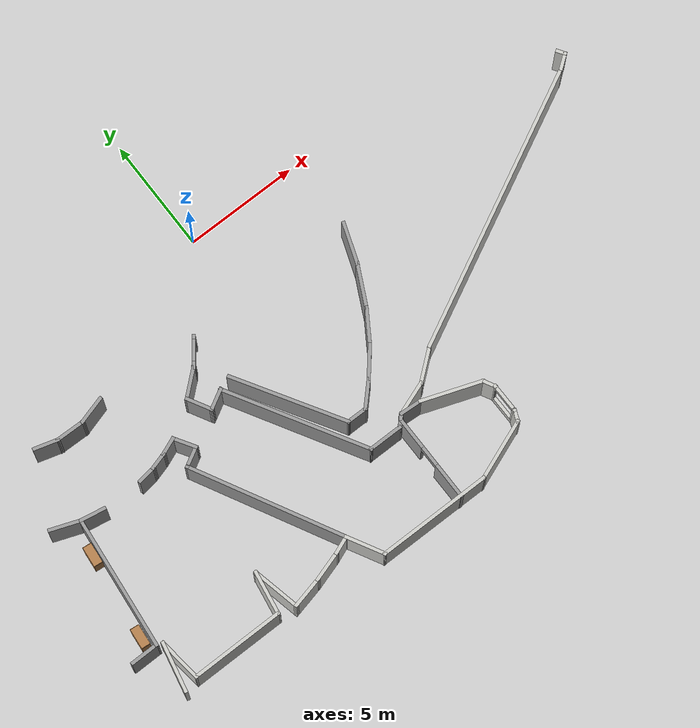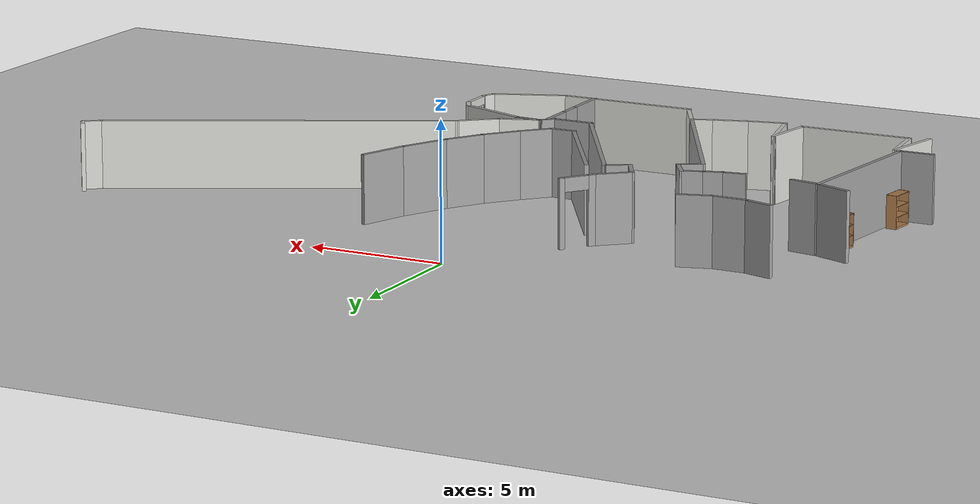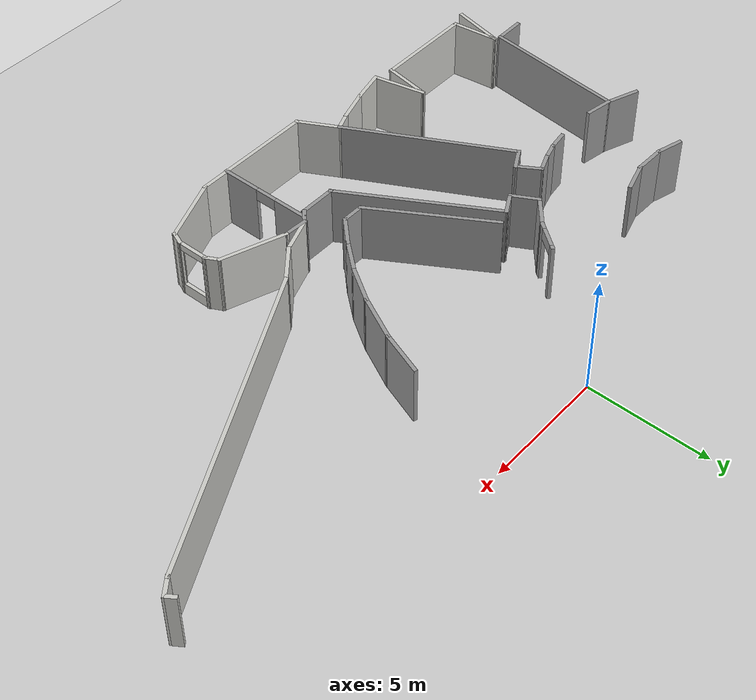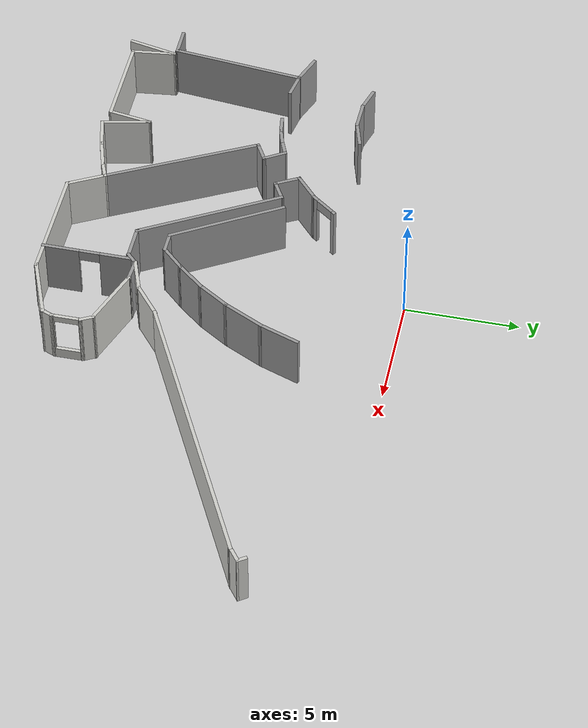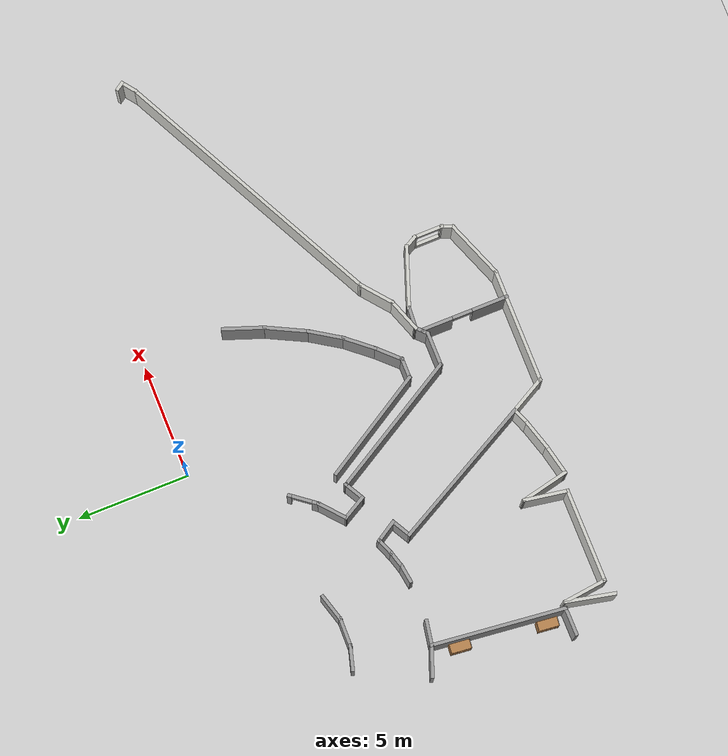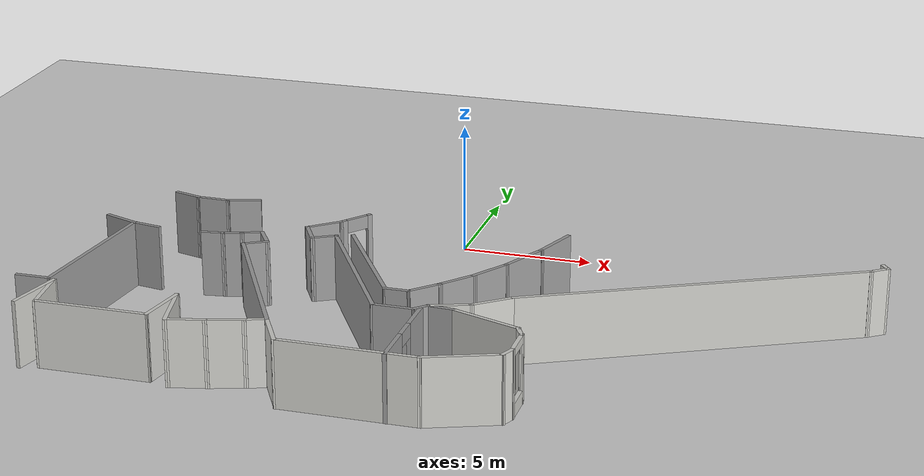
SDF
<sdf version="1.7">
 <world name="default">
  <model name="ground_plane">
   <static>1</static>
   <link name="link">
    <collision name="collision">
     <geometry><plane><normal>0 0 1</normal><size>100 100</size></plane></geometry>
     <surface>
      <contact><collide_bitmask>65535</collide_bitmask></contact>
      <friction><ode><mu>100</mu><mu2>50</mu2></ode></friction>
     </surface>
    </collision>
    <visual name="visual">
     <cast_shadows>0</cast_shadows>
     <geometry><plane><normal>0 0 1</normal><size>100 100</size></plane></geometry>
     <material>
      <script><uri>file://media/materials/scripts/gazebo.material</uri><name>Gazebo/Grey</name></script>
     </material>
    </visual>
   </link>
  </model>
  <model name="model">
   <pose>-4.1341 -0.05921 0 0 -0 0</pose>
   <link name="Wall_164">
    <collision name="Wall_164_Collision">
     <geometry><box><size>1.33004 0.15 2.5</size></box></geometry>
     <pose>0 0 1.25 0 -0 0</pose>
    </collision>
    <visual name="Wall_164_Visual">
     <pose>0 0 1.25 0 -0 0</pose>
     <geometry><box><size>1.33004 0.15 2.5</size></box></geometry>
     <material>
      <script><uri>file://media/materials/scripts/gazebo.material</uri><name>Gazebo/Grey</name></script>
      <ambient>1 1 1 1</ambient>
     </material>
     <meta><layer>0</layer></meta>
    </visual>
    <pose>-7.85259 -12.618 0 0 -0 0.008474</pose>
   </link>
   <link name="Wall_166">
    <collision name="Wall_166_Collision">
     <geometry><box><size>5.98967 0.15 2.5</size></box></geometry>
     <pose>0 0 1.25 0 -0 0</pose>
    </collision>
    <visual name="Wall_166_Visual">
     <pose>0 0 1.25 0 -0 0</pose>
     <geometry><box><size>5.98967 0.15 2.5</size></box></geometry>
     <material>
      <script><uri>file://media/materials/scripts/gazebo.material</uri><name>Gazebo/Grey</name></script>
      <ambient>1 1 1 1</ambient>
     </material>
     <meta><layer>0</layer></meta>
    </visual>
    <pose>-6.94415 -9.71055 0 0 -0 1.46152</pose>
   </link>
   <link name="Wall_167">
    <collision name="Wall_167_Collision">
     <geometry><box><size>1.20017 0.15 2.5</size></box></geometry>
     <pose>0 0 1.25 0 -0 0</pose>
    </collision>
    <visual name="Wall_167_Visual">
     <pose>0 0 1.25 0 -0 0</pose>
     <geometry><box><size>1.20017 0.15 2.5</size></box></geometry>
     <material>
      <script><uri>file://media/materials/scripts/gazebo.material</uri><name>Gazebo/Grey</name></script>
      <ambient>1 1 1 1</ambient>
     </material>
     <meta><layer>0</layer></meta>
    </visual>
    <pose>-6.10861 -6.89938 0 0 -0 -0.174672</pose>
   </link>
   <link name="Wall_169">
    <collision name="Wall_169_Collision">
     <geometry><box><size>1.45339 0.15 2.5</size></box></geometry>
     <pose>0 0 1.25 0 -0 0</pose>
    </collision>
    <visual name="Wall_169_Visual">
     <pose>0 0 1.25 0 -0 0</pose>
     <geometry><box><size>1.45339 0.15 2.5</size></box></geometry>
     <material>
      <script><uri>file://media/materials/scripts/gazebo.material</uri><name>Gazebo/Grey</name></script>
      <ambient>1 1 1 1</ambient>
     </material>
     <meta><layer>0</layer></meta>
    </visual>
    <pose>-7.23666 -6.58131 0 0 -0 2.7861</pose>
   </link>
   <link name="Wall_173">
    <collision name="Wall_173_Collision">
     <geometry><box><size>0.887742 0.15 2.5</size></box></geometry>
     <pose>0 0 1.25 0 -0 0</pose>
    </collision>
    <visual name="Wall_173_Visual">
     <pose>0 0 1.25 0 -0 0</pose>
     <geometry><box><size>0.887742 0.15 2.5</size></box></geometry>
     <material>
      <script><uri>file://media/materials/scripts/gazebo.material</uri><name>Gazebo/Grey</name></script>
      <ambient>1 1 1 1</ambient>
     </material>
     <meta><layer>0</layer></meta>
    </visual>
    <pose>-3.43446 -6.9344 0 0 -0 0.144812</pose>
   </link>
   <link name="Wall_174">
    <collision name="Wall_174_Collision">
     <geometry><box><size>0.847782 0.15 2.5</size></box></geometry>
     <pose>0 0 1.25 0 -0 0</pose>
    </collision>
    <visual name="Wall_174_Visual">
     <pose>0 0 1.25 0 -0 0</pose>
     <geometry><box><size>0.847782 0.15 2.5</size></box></geometry>
     <material>
      <script><uri>file://media/materials/scripts/gazebo.material</uri><name>Gazebo/Grey</name></script>
      <ambient>1 1 1 1</ambient>
     </material>
     <meta><layer>0</layer></meta>
    </visual>
    <pose>-2.73486 -6.78231 0 0 -0 0.287281</pose>
   </link>
   <link name="Wall_175">
    <collision name="Wall_175_Collision">
     <geometry><box><size>0.887115 0.15 2.5</size></box></geometry>
     <pose>0 0 1.25 0 -0 0</pose>
    </collision>
    <visual name="Wall_175_Visual">
     <pose>0 0 1.25 0 -0 0</pose>
     <geometry><box><size>0.887115 0.15 2.5</size></box></geometry>
     <material>
      <script><uri>file://media/materials/scripts/gazebo.material</uri><name>Gazebo/Grey</name></script>
      <ambient>1 1 1 1</ambient>
     </material>
     <meta><layer>0</layer></meta>
    </visual>
    <pose>-2.05807 -6.54657 0 0 -0 0.380506</pose>
   </link>
   <link name="Wall_176">
    <collision name="Wall_176_Collision">
     <geometry><box><size>1.13341 0.15 2.5</size></box></geometry>
     <pose>0 0 1.25 0 -0 0</pose>
    </collision>
    <visual name="Wall_176_Visual">
     <pose>0 0 1.25 0 -0 0</pose>
     <geometry><box><size>1.13341 0.15 2.5</size></box></geometry>
     <material>
      <script><uri>file://media/materials/scripts/gazebo.material</uri><name>Gazebo/Grey</name></script>
      <ambient>1 1 1 1</ambient>
     </material>
     <meta><layer>0</layer></meta>
    </visual>
    <pose>-1.45732 -6.82794 0 0 -0 -1.01711</pose>
   </link>
   <link name="Wall_177">
    <collision name="Wall_177_Collision">
     <geometry><box><size>1.02156 0.15 2.5</size></box></geometry>
     <pose>0 0 1.25 0 -0 0</pose>
    </collision>
    <visual name="Wall_177_Visual">
     <pose>0 0 1.25 0 -0 0</pose>
     <geometry><box><size>1.02156 0.15 2.5</size></box></geometry>
     <material>
      <script><uri>file://media/materials/scripts/gazebo.material</uri><name>Gazebo/Grey</name></script>
      <ambient>1 1 1 1</ambient>
     </material>
     <meta><layer>0</layer></meta>
    </visual>
    <pose>-1.57899 -7.4591 0 0 -0 -2.6311</pose>
   </link>
   <link name="Wall_180">
    <collision name="Wall_180_Collision">
     <geometry><box><size>7.09459 0.15 2.5</size></box></geometry>
     <pose>0 0 1.25 0 -0 0</pose>
    </collision>
    <visual name="Wall_180_Visual">
     <pose>0 0 1.25 0 -0 0</pose>
     <geometry><box><size>7.09459 0.15 2.5</size></box></geometry>
     <material>
      <script><uri>file://media/materials/scripts/gazebo.material</uri><name>Gazebo/Grey</name></script>
      <ambient>1 1 1 1</ambient>
     </material>
     <meta><layer>0</layer></meta>
    </visual>
    <pose>-0.326679 -10.7366 0 0 -0 -1.08132</pose>
   </link>
   <link name="Wall_184">
    <pose>1.08477 -4.094 0 0 -0 -2.22364</pose>
    <visual name="Wall_184_Visual_0">
     <pose>-0.623774 0 1.25 0 -0 0</pose>
     <geometry><box><size>0.193801 0.15 2.5</size></box></geometry>
     <material>
      <script><uri>file://media/materials/scripts/gazebo.material</uri><name>Gazebo/Grey</name></script>
      <ambient>1 1 1 1</ambient>
     </material>
     <meta><layer>0</layer></meta>
    </visual>
    <collision name="Wall_184_Collision_0">
     <geometry><box><size>0.193801 0.15 2.5</size></box></geometry>
     <pose>-0.623774 0 1.25 0 -0 0</pose>
    </collision>
    <visual name="Wall_184_Visual_1">
     <pose>0.5469 0 1.25 0 -0 0</pose>
     <geometry><box><size>0.347547 0.15 2.5</size></box></geometry>
     <material>
      <script><uri>file://media/materials/scripts/gazebo.material</uri><name>Gazebo/Grey</name></script>
      <ambient>1 1 1 1</ambient>
     </material>
     <meta><layer>0</layer></meta>
    </visual>
    <collision name="Wall_184_Collision_1">
     <geometry><box><size>0.347547 0.15 2.5</size></box></geometry>
     <pose>0.5469 0 1.25 0 -0 0</pose>
    </collision>
    <visual name="Wall_184_Visual_2">
     <pose>-0.076873 0 2.25 0 -0 0</pose>
     <geometry><box><size>0.9 0.15 0.5</size></box></geometry>
     <material>
      <script><uri>file://media/materials/scripts/gazebo.material</uri><name>Gazebo/Grey</name></script>
      <ambient>1 1 1 1</ambient>
     </material>
     <meta><layer>0</layer></meta>
    </visual>
    <collision name="Wall_184_Collision_2">
     <geometry><box><size>0.9 0.15 0.5</size></box></geometry>
     <pose>-0.076873 0 2.25 0 -0 0</pose>
    </collision>
   </link>
   <link name="Wall_185">
    <collision name="Wall_185_Collision">
     <geometry><box><size>1.4602 0.15 2.5</size></box></geometry>
     <pose>0 0 1.25 0 -0 0</pose>
    </collision>
    <visual name="Wall_185_Visual">
     <pose>0 0 1.25 0 -0 0</pose>
     <geometry><box><size>1.4602 0.15 2.5</size></box></geometry>
     <material>
      <script><uri>file://media/materials/scripts/gazebo.material</uri><name>Gazebo/Grey</name></script>
      <ambient>1 1 1 1</ambient>
     </material>
     <meta><layer>0</layer></meta>
    </visual>
    <pose>0.196945 -5.0353 0 0 -0 -2.4288</pose>
   </link>
   <link name="Wall_187">
    <collision name="Wall_187_Collision">
     <geometry><box><size>1.24375 0.15 2.5</size></box></geometry>
     <pose>0 0 1.25 0 -0 0</pose>
    </collision>
    <visual name="Wall_187_Visual">
     <pose>0 0 1.25 0 -0 0</pose>
     <geometry><box><size>1.24375 0.15 2.5</size></box></geometry>
     <material>
      <script><uri>file://media/materials/scripts/gazebo.material</uri><name>Gazebo/Grey</name></script>
      <ambient>1 1 1 1</ambient>
     </material>
     <meta><layer>0</layer></meta>
    </visual>
    <pose>-0.033447 -5.94196 0 0 -0 -1.06447</pose>
   </link>
   <link name="Wall_190">
    <collision name="Wall_190_Collision">
     <geometry><box><size>0.15 0.15 2.5</size></box></geometry>
     <pose>0 0 1.25 0 -0 0</pose>
    </collision>
    <visual name="Wall_190_Visual">
     <pose>0 0 1.25 0 -0 0</pose>
     <geometry><box><size>0.15 0.15 2.5</size></box></geometry>
     <material>
      <script><uri>file://media/materials/scripts/gazebo.material</uri><name>Gazebo/Grey</name></script>
      <ambient>1 1 1 1</ambient>
     </material>
     <meta><layer>0</layer></meta>
    </visual>
    <pose>1.00568 -5.98544 0 0 -0 0</pose>
   </link>
   <link name="Wall_192">
    <collision name="Wall_192_Collision">
     <geometry><box><size>0.15 0.15 2.5</size></box></geometry>
     <pose>0 0 1.25 0 -0 0</pose>
    </collision>
    <visual name="Wall_192_Visual">
     <pose>0 0 1.25 0 -0 0</pose>
     <geometry><box><size>0.15 0.15 2.5</size></box></geometry>
     <material>
      <script><uri>file://media/materials/scripts/gazebo.material</uri><name>Gazebo/Grey</name></script>
      <ambient>0 0 0 1</ambient>
     </material>
     <meta><layer>0</layer></meta>
    </visual>
    <pose>1.00568 -5.98544 0 0 -0 0</pose>
   </link>
   <link name="Wall_193">
    <collision name="Wall_193_Collision">
     <geometry><box><size>1.03768 0.15 2.5</size></box></geometry>
     <pose>0 0 1.25 0 -0 0</pose>
    </collision>
    <visual name="Wall_193_Visual">
     <pose>0 0 1.25 0 -0 0</pose>
     <geometry><box><size>1.03768 0.15 2.5</size></box></geometry>
     <material>
      <script><uri>file://media/materials/scripts/gazebo.material</uri><name>Gazebo/Grey</name></script>
      <ambient>1 1 1 1</ambient>
     </material>
     <meta><layer>0</layer></meta>
    </visual>
    <pose>0.618727 -6.20283 0 0 -0 0.511856</pose>
   </link>
   <link name="Wall_196">
    <collision name="Wall_196_Collision">
     <geometry><box><size>6.65835 0.15 2.5</size></box></geometry>
     <pose>0 0 1.25 0 -0 0</pose>
    </collision>
    <visual name="Wall_196_Visual">
     <pose>0 0 1.25 0 -0 0</pose>
     <geometry><box><size>6.65835 0.15 2.5</size></box></geometry>
     <material>
      <script><uri>file://media/materials/scripts/gazebo.material</uri><name>Gazebo/Grey</name></script>
      <ambient>1 1 1 1</ambient>
     </material>
     <meta><layer>0</layer></meta>
    </visual>
    <pose>2.64198 -8.7983 0 0 -0 -1.04393</pose>
   </link>
   <link name="Wall_197">
    <collision name="Wall_197_Collision">
     <geometry><box><size>1.59491 0.15 2.5</size></box></geometry>
     <pose>0 0 1.25 0 -0 0</pose>
    </collision>
    <visual name="Wall_197_Visual">
     <pose>0 0 1.25 0 -0 0</pose>
     <geometry><box><size>1.59491 0.15 2.5</size></box></geometry>
     <material>
      <script><uri>file://media/materials/scripts/gazebo.material</uri><name>Gazebo/Grey</name></script>
      <ambient>1 1 1 1</ambient>
     </material>
     <meta><layer>0</layer></meta>
    </visual>
    <pose>5.00069 -11.6112 0 0 -0 0</pose>
   </link>
   <link name="Wall_199">
    <collision name="Wall_199_Collision">
     <geometry><box><size>0.713098 0.15 2.5</size></box></geometry>
     <pose>0 0 1.25 0 -0 0</pose>
    </collision>
    <visual name="Wall_199_Visual">
     <pose>0 0 1.25 0 -0 0</pose>
     <geometry><box><size>0.713098 0.15 2.5</size></box></geometry>
     <material>
      <script><uri>file://media/materials/scripts/gazebo.material</uri><name>Gazebo/Grey</name></script>
      <ambient>1 1 1 1</ambient>
     </material>
     <meta><layer>0</layer></meta>
    </visual>
    <pose>5.9241 -11.414 0 0 -0 0.775769</pose>
   </link>
   <link name="Wall_204">
    <pose>5.9425 -13.3805 0 0 -0 1.5708</pose>
    <visual name="Wall_204_Visual_0">
     <pose>-1.17213 0 1.25 0 -0 0</pose>
     <geometry><box><size>1.65574 0.15 2.5</size></box></geometry>
     <material>
      <script><uri>file://media/materials/scripts/gazebo.material</uri><name>Gazebo/Grey</name></script>
      <ambient>1 1 1 1</ambient>
     </material>
     <meta><layer>0</layer></meta>
    </visual>
    <collision name="Wall_204_Collision_0">
     <geometry><box><size>1.65574 0.15 2.5</size></box></geometry>
     <pose>-1.17213 0 1.25 0 -0 0</pose>
    </collision>
    <visual name="Wall_204_Visual_1">
     <pose>1.27787 0 1.25 0 -0 0</pose>
     <geometry><box><size>1.44426 0.15 2.5</size></box></geometry>
     <material>
      <script><uri>file://media/materials/scripts/gazebo.material</uri><name>Gazebo/Grey</name></script>
      <ambient>1 1 1 1</ambient>
     </material>
     <meta><layer>0</layer></meta>
    </visual>
    <collision name="Wall_204_Collision_1">
     <geometry><box><size>1.44426 0.15 2.5</size></box></geometry>
     <pose>1.27787 0 1.25 0 -0 0</pose>
    </collision>
    <visual name="Wall_204_Visual_2">
     <pose>0.105736 0 2.25 0 -0 0</pose>
     <geometry><box><size>0.9 0.15 0.5</size></box></geometry>
     <material>
      <script><uri>file://media/materials/scripts/gazebo.material</uri><name>Gazebo/Grey</name></script>
      <ambient>1 1 1 1</ambient>
     </material>
     <meta><layer>0</layer></meta>
    </visual>
    <collision name="Wall_204_Collision_2">
     <geometry><box><size>0.9 0.15 0.5</size></box></geometry>
     <pose>0.105736 0 2.25 0 -0 0</pose>
    </collision>
   </link>
   <link name="Wall_214">
    <collision name="Wall_214_Collision">
     <geometry><box><size>1.91476 0.15 2.5</size></box></geometry>
     <pose>0 0 1.25 0 -0 0</pose>
    </collision>
    <visual name="Wall_214_Visual">
     <pose>0 0 1.25 0 -0 0</pose>
     <geometry><box><size>1.91476 0.15 2.5</size></box></geometry>
     <material>
      <script><uri>file://media/materials/scripts/gazebo.material</uri><name>Gazebo/Grey</name></script>
      <ambient>1 1 1 1</ambient>
     </material>
     <meta><layer>0</layer></meta>
    </visual>
    <pose>8.81934 -4.41818 0 0 -0 -1.91449</pose>
   </link>
   <link name="Wall_215">
    <collision name="Wall_215_Collision">
     <geometry><box><size>2.02138 0.15 2.5</size></box></geometry>
     <pose>0 0 1.25 0 -0 0</pose>
    </collision>
    <visual name="Wall_215_Visual">
     <pose>0 0 1.25 0 -0 0</pose>
     <geometry><box><size>2.02138 0.15 2.5</size></box></geometry>
     <material>
      <script><uri>file://media/materials/scripts/gazebo.material</uri><name>Gazebo/Grey</name></script>
      <ambient>1 1 1 1</ambient>
     </material>
     <meta><layer>0</layer></meta>
    </visual>
    <pose>8.10465 -6.08641 0 0 -0 -2.03314</pose>
   </link>
   <link name="Wall_217">
    <collision name="Wall_217_Collision">
     <geometry><box><size>1.66874 0.15 2.5</size></box></geometry>
     <pose>0 0 1.25 0 -0 0</pose>
    </collision>
    <visual name="Wall_217_Visual">
     <pose>0 0 1.25 0 -0 0</pose>
     <geometry><box><size>1.66874 0.15 2.5</size></box></geometry>
     <material>
      <script><uri>file://media/materials/scripts/gazebo.material</uri><name>Gazebo/Grey</name></script>
      <ambient>1 1 1 1</ambient>
     </material>
     <meta><layer>0</layer></meta>
    </visual>
    <pose>7.27665 -7.56263 0 0 -0 -2.14213</pose>
   </link>
   <link name="Wall_218">
    <collision name="Wall_218_Collision">
     <geometry><box><size>1.57541 0.15 2.5</size></box></geometry>
     <pose>0 0 1.25 0 -0 0</pose>
    </collision>
    <visual name="Wall_218_Visual">
     <pose>0 0 1.25 0 -0 0</pose>
     <geometry><box><size>1.57541 0.15 2.5</size></box></geometry>
     <material>
      <script><uri>file://media/materials/scripts/gazebo.material</uri><name>Gazebo/Grey</name></script>
      <ambient>1 1 1 1</ambient>
     </material>
     <meta><layer>0</layer></meta>
    </visual>
    <pose>6.40975 -8.74891 0 0 -0 -2.26553</pose>
   </link>
   <link name="Wall_219">
    <collision name="Wall_219_Collision">
     <geometry><box><size>1.37617 0.15 2.5</size></box></geometry>
     <pose>0 0 1.25 0 -0 0</pose>
    </collision>
    <visual name="Wall_219_Visual">
     <pose>0 0 1.25 0 -0 0</pose>
     <geometry><box><size>1.37617 0.15 2.5</size></box></geometry>
     <material>
      <script><uri>file://media/materials/scripts/gazebo.material</uri><name>Gazebo/Grey</name></script>
      <ambient>1 1 1 1</ambient>
     </material>
     <meta><layer>0</layer></meta>
    </visual>
    <pose>5.52765 -9.73748 0 0 -0 -2.33865</pose>
   </link>
   <link name="Wall_220">
    <collision name="Wall_220_Collision">
     <geometry><box><size>1 0.15 2.5</size></box></geometry>
     <pose>0 0 1.25 0 -0 0</pose>
    </collision>
    <visual name="Wall_220_Visual">
     <pose>0 0 1.25 0 -0 0</pose>
     <geometry><box><size>1 0.15 2.5</size></box></geometry>
     <material>
      <script><uri>file://media/materials/scripts/gazebo.material</uri><name>Gazebo/Grey</name></script>
      <ambient>1 1 1 1</ambient>
     </material>
     <meta><layer>0</layer></meta>
    </visual>
    <pose>4.6768 -10.1785 0 0 -0 3.14159</pose>
   </link>
   <link name="Wall_221">
    <collision name="Wall_221_Collision">
     <geometry><box><size>5.30224 0.15 2.5</size></box></geometry>
     <pose>0 0 1.25 0 -0 0</pose>
    </collision>
    <visual name="Wall_221_Visual">
     <pose>0 0 1.25 0 -0 0</pose>
     <geometry><box><size>5.30224 0.15 2.5</size></box></geometry>
     <material>
      <script><uri>file://media/materials/scripts/gazebo.material</uri><name>Gazebo/Grey</name></script>
      <ambient>1 1 1 1</ambient>
     </material>
     <meta><layer>0</layer></meta>
    </visual>
    <pose>2.92019 -7.97326 0 0 -0 2.11403</pose>
   </link>
   <link name="Wall_317">
    <collision name="Wall_317_Collision">
     <geometry><box><size>1.33513 0.15 2.5</size></box></geometry>
     <pose>0 0 1.25 0 -0 0</pose>
    </collision>
    <visual name="Wall_317_Visual">
     <pose>0 0 1.25 0 -0 0</pose>
     <geometry><box><size>1.33513 0.15 2.5</size></box></geometry>
     <material>
      <script><uri>file://media/materials/scripts/gazebo.material</uri><name>Gazebo/Grey</name></script>
      <ambient>1 1 1 1</ambient>
     </material>
     <meta><layer>0</layer></meta>
    </visual>
    <pose>-3.5968 -3.48902 0 0 -0 -2.85799</pose>
   </link>
   <link name="Wall_318">
    <collision name="Wall_318_Collision">
     <geometry><box><size>1.36212 0.15 2.5</size></box></geometry>
     <pose>0 0 1.25 0 -0 0</pose>
    </collision>
    <visual name="Wall_318_Visual">
     <pose>0 0 1.25 0 -0 0</pose>
     <geometry><box><size>1.36212 0.15 2.5</size></box></geometry>
     <material>
      <script><uri>file://media/materials/scripts/gazebo.material</uri><name>Gazebo/Grey</name></script>
      <ambient>1 1 1 1</ambient>
     </material>
     <meta><layer>0</layer></meta>
    </visual>
    <pose>-4.77176 -3.64339 0 0 -0 3.12273</pose>
   </link>
   <link name="Wall_319">
    <collision name="Wall_319_Collision">
     <geometry><box><size>1.16705 0.15 2.5</size></box></geometry>
     <pose>0 0 1.25 0 -0 0</pose>
    </collision>
    <visual name="Wall_319_Visual">
     <pose>0 0 1.25 0 -0 0</pose>
     <geometry><box><size>1.16705 0.15 2.5</size></box></geometry>
     <material>
      <script><uri>file://media/materials/scripts/gazebo.material</uri><name>Gazebo/Grey</name></script>
      <ambient>1 1 1 1</ambient>
     </material>
     <meta><layer>0</layer></meta>
    </visual>
    <pose>-5.86666 -3.49187 0 0 -0 2.86252</pose>
   </link>
   <link name="Wall_44">
    <collision name="Wall_44_Collision">
     <geometry><box><size>0.477158 0.15 2.5</size></box></geometry>
     <pose>0 0 1.25 0 -0 0</pose>
    </collision>
    <visual name="Wall_44_Visual">
     <pose>0 0 1.25 0 -0 0</pose>
     <geometry><box><size>0.477158 0.15 2.5</size></box></geometry>
     <material>
      <script><uri>file://media/materials/scripts/gazebo.material</uri><name>Gazebo/CeilingTiled</name></script>
      <ambient>0.964706 1 0.972549 1</ambient>
     </material>
     <meta><layer>0</layer></meta>
    </visual>
    <pose>20.5568 -3.36224 0 0 -0 -0.982794</pose>
   </link>
   <link name="Wall_46">
    <collision name="Wall_46_Collision">
     <geometry><box><size>0.829776 0.15 2.5</size></box></geometry>
     <pose>0 0 1.25 0 -0 0</pose>
    </collision>
    <visual name="Wall_46_Visual">
     <pose>0 0 1.25 0 -0 0</pose>
     <geometry><box><size>0.829776 0.15 2.5</size></box></geometry>
     <material>
      <script><uri>file://media/materials/scripts/gazebo.material</uri><name>Gazebo/CeilingTiled</name></script>
      <ambient>0.964706 1 0.972549 1</ambient>
     </material>
     <meta><layer>0</layer></meta>
    </visual>
    <pose>20.3768 -3.70389 0 0 -0 -2.49216</pose>
   </link>
   <link name="Wall_48">
    <collision name="Wall_48_Collision">
     <geometry><box><size>12.9371 0.15 2.5</size></box></geometry>
     <pose>0 0 1.25 0 -0 0</pose>
    </collision>
    <visual name="Wall_48_Visual">
     <pose>0 0 1.25 0 -0 0</pose>
     <geometry><box><size>12.9371 0.15 2.5</size></box></geometry>
     <material>
      <script><uri>file://media/materials/scripts/gazebo.material</uri><name>Gazebo/CeilingTiled</name></script>
      <ambient>0.964706 1 0.972549 1</ambient>
     </material>
     <meta><layer>0</layer></meta>
    </visual>
    <pose>14.4129 -6.81893 0 0 -0 -2.66914</pose>
   </link>
   <link name="Wall_49">
    <collision name="Wall_49_Collision">
     <geometry><box><size>1.70812 0.15 2.5</size></box></geometry>
     <pose>0 0 1.25 0 -0 0</pose>
    </collision>
    <visual name="Wall_49_Visual">
     <pose>0 0 1.25 0 -0 0</pose>
     <geometry><box><size>1.70812 0.15 2.5</size></box></geometry>
     <material>
      <script><uri>file://media/materials/scripts/gazebo.material</uri><name>Gazebo/CeilingTiled</name></script>
      <ambient>0.964706 1 0.972549 1</ambient>
     </material>
     <meta><layer>0</layer></meta>
    </visual>
    <pose>8.11633 -10.2212 0 0 -0 -2.45677</pose>
   </link>
   <link name="Wall_50">
    <collision name="Wall_50_Collision">
     <geometry><box><size>1.62612 0.15 2.5</size></box></geometry>
     <pose>0 0 1.25 0 -0 0</pose>
    </collision>
    <visual name="Wall_50_Visual">
     <pose>0 0 1.25 0 -0 0</pose>
     <geometry><box><size>1.62612 0.15 2.5</size></box></geometry>
     <material>
      <script><uri>file://media/materials/scripts/gazebo.material</uri><name>Gazebo/CeilingTiled</name></script>
      <ambient>0.964706 1 0.972549 1</ambient>
     </material>
     <meta><layer>0</layer></meta>
    </visual>
    <pose>6.81901 -10.9654 0 0 -0 -2.79399</pose>
   </link>
   <link name="Wall_51">
    <collision name="Wall_51_Collision">
     <geometry><box><size>1.05712 0.15 2.5</size></box></geometry>
     <pose>0 0 1.25 0 -0 0</pose>
    </collision>
    <visual name="Wall_51_Visual">
     <pose>0 0 1.25 0 -0 0</pose>
     <geometry><box><size>1.05712 0.15 2.5</size></box></geometry>
     <material>
      <script><uri>file://media/materials/scripts/gazebo.material</uri><name>Gazebo/Grey</name></script>
      <ambient>0.964706 1 0.972549 1</ambient>
     </material>
     <meta><layer>0</layer></meta>
    </visual>
    <pose>6.57765 -11.247 0 0 -0 -0.066568</pose>
   </link>
   <link name="Wall_53">
    <collision name="Wall_53_Collision">
     <geometry><box><size>2.80305 0.15 2.5</size></box></geometry>
     <pose>0 0 1.25 0 -0 0</pose>
    </collision>
    <visual name="Wall_53_Visual">
     <pose>0 0 1.25 0 -0 0</pose>
     <geometry><box><size>2.80305 0.15 2.5</size></box></geometry>
     <material>
      <script><uri>file://media/materials/scripts/gazebo.material</uri><name>Gazebo/CeilingTiled</name></script>
      <ambient>0.964706 1 0.972549 1</ambient>
     </material>
     <meta><layer>0</layer></meta>
    </visual>
    <pose>8.27876 -11.7253 0 0 -0 -0.344555</pose>
   </link>
   <link name="Wall_54">
    <collision name="Wall_54_Collision">
     <geometry><box><size>0.68108 0.15 2.5</size></box></geometry>
     <pose>0 0 1.25 0 -0 0</pose>
    </collision>
    <visual name="Wall_54_Visual">
     <pose>0 0 1.25 0 -0 0</pose>
     <geometry><box><size>0.68108 0.15 2.5</size></box></geometry>
     <material>
      <script><uri>file://media/materials/scripts/gazebo.material</uri><name>Gazebo/CeilingTiled</name></script>
      <ambient>1 1 1 1</ambient>
     </material>
     <meta><layer>0</layer></meta>
    </visual>
    <pose>9.65208 -12.4077 0 0 -0 -1.08168</pose>
   </link>
   <link name="Wall_55">
    <pose>9.78063 -13.2622 0 0 -0 -1.5647</pose>
    <visual name="Wall_55_Visual_0">
     <pose>-0.617424 0 1.25 0 -0 0</pose>
     <geometry><box><size>0.15525 0.15 2.5</size></box></geometry>
     <material>
      <script><uri>file://media/materials/scripts/gazebo.material</uri><name>Gazebo/CeilingTiled</name></script>
      <ambient>0.964706 1 0.972549 1</ambient>
     </material>
     <meta><layer>0</layer></meta>
    </visual>
    <collision name="Wall_55_Collision_0">
     <geometry><box><size>0.15525 0.15 2.5</size></box></geometry>
     <pose>-0.617424 0 1.25 0 -0 0</pose>
    </collision>
    <visual name="Wall_55_Visual_1">
     <pose>0.077625 0 0.25 0 -0 0</pose>
     <geometry><box><size>1.23485 0.15 0.5</size></box></geometry>
     <material>
      <script><uri>file://media/materials/scripts/gazebo.material</uri><name>Gazebo/CeilingTiled</name></script>
      <ambient>0.964706 1 0.972549 1</ambient>
     </material>
     <meta><layer>0</layer></meta>
    </visual>
    <collision name="Wall_55_Collision_1">
     <geometry><box><size>1.23485 0.15 0.5</size></box></geometry>
     <pose>0.077625 0 0.25 0 -0 0</pose>
    </collision>
    <visual name="Wall_55_Visual_2">
     <pose>0.612625 0 1.5 0 -0 0</pose>
     <geometry><box><size>0.164848 0.15 2</size></box></geometry>
     <material>
      <script><uri>file://media/materials/scripts/gazebo.material</uri><name>Gazebo/CeilingTiled</name></script>
      <ambient>0.964706 1 0.972549 1</ambient>
     </material>
     <meta><layer>0</layer></meta>
    </visual>
    <collision name="Wall_55_Collision_2">
     <geometry><box><size>0.164848 0.15 2</size></box></geometry>
     <pose>0.612625 0 1.5 0 -0 0</pose>
    </collision>
    <visual name="Wall_55_Visual_3">
     <pose>-0.004799 0 2.35 0 -0 0</pose>
     <geometry><box><size>1.07 0.15 0.3</size></box></geometry>
     <material>
      <script><uri>file://media/materials/scripts/gazebo.material</uri><name>Gazebo/CeilingTiled</name></script>
      <ambient>0.964706 1 0.972549 1</ambient>
     </material>
     <meta><layer>0</layer></meta>
    </visual>
    <collision name="Wall_55_Collision_3">
     <geometry><box><size>1.07 0.15 0.3</size></box></geometry>
     <pose>-0.004799 0 2.35 0 -0 0</pose>
    </collision>
   </link>
   <link name="Wall_57">
    <collision name="Wall_57_Collision">
     <geometry><box><size>0.624626 0.15 2.5</size></box></geometry>
     <pose>0 0 1.25 0 -0 0</pose>
    </collision>
    <visual name="Wall_57_Visual">
     <pose>0 0 1.25 0 -0 0</pose>
     <geometry><box><size>0.624626 0.15 2.5</size></box></geometry>
     <material>
      <script><uri>file://media/materials/scripts/gazebo.material</uri><name>Gazebo/CeilingTiled</name></script>
      <ambient>0.964706 1 0.972549 1</ambient>
     </material>
     <meta><layer>0</layer></meta>
    </visual>
    <pose>9.69387 -14.1016 0 0 -0 -1.96225</pose>
   </link>
   <link name="Wall_58">
    <collision name="Wall_58_Collision">
     <geometry><box><size>2.829 0.15 2.5</size></box></geometry>
     <pose>0 0 1.25 0 -0 0</pose>
    </collision>
    <visual name="Wall_58_Visual">
     <pose>0 0 1.25 0 -0 0</pose>
     <geometry><box><size>2.829 0.15 2.5</size></box></geometry>
     <material>
      <script><uri>file://media/materials/scripts/gazebo.material</uri><name>Gazebo/CeilingTiled</name></script>
      <ambient>0.964706 1 0.972549 1</ambient>
     </material>
     <meta><layer>0</layer></meta>
    </visual>
    <pose>8.35404 -14.8042 0 0 -0 -2.77248</pose>
   </link>
   <link name="Wall_60">
    <collision name="Wall_60_Collision">
     <geometry><box><size>5.14219 0.15 2.5</size></box></geometry>
     <pose>0 0 1.25 0 -0 0</pose>
    </collision>
    <visual name="Wall_60_Visual">
     <pose>0 0 1.25 0 -0 0</pose>
     <geometry><box><size>5.14219 0.15 2.5</size></box></geometry>
     <material>
      <script><uri>file://media/materials/scripts/gazebo.material</uri><name>Gazebo/CeilingTiled</name></script>
      <ambient>0.964706 1 0.972549 1</ambient>
     </material>
     <meta><layer>0</layer></meta>
    </visual>
    <pose>4.60867 -15.2849 0 0 -0 3.14057</pose>
   </link>
   <link name="Wall_61">
    <collision name="Wall_61_Collision">
     <geometry><box><size>1.83664 0.15 2.5</size></box></geometry>
     <pose>0 0 1.25 0 -0 0</pose>
    </collision>
    <visual name="Wall_61_Visual">
     <pose>0 0 1.25 0 -0 0</pose>
     <geometry><box><size>1.83664 0.15 2.5</size></box></geometry>
     <material>
      <script><uri>file://media/materials/scripts/gazebo.material</uri><name>Gazebo/CeilingTiled</name></script>
      <ambient>0.964706 1 0.972549 1</ambient>
     </material>
     <meta><layer>0</layer></meta>
    </visual>
    <pose>1.70922 -14.5418 0 0 -0 2.06952</pose>
   </link>
   <link name="Wall_62">
    <collision name="Wall_62_Collision">
     <geometry><box><size>0.903941 0.15 2.5</size></box></geometry>
     <pose>0 0 1.25 0 -0 0</pose>
    </collision>
    <visual name="Wall_62_Visual">
     <pose>0 0 1.25 0 -0 0</pose>
     <geometry><box><size>0.903941 0.15 2.5</size></box></geometry>
     <material>
      <script><uri>file://media/materials/scripts/gazebo.material</uri><name>Gazebo/CeilingTiled</name></script>
      <ambient>0.964706 1 0.972549 1</ambient>
     </material>
     <meta><layer>0</layer></meta>
    </visual>
    <pose>0.955392 -13.94 0 0 -0 -2.76434</pose>
   </link>
   <link name="Wall_63">
    <collision name="Wall_63_Collision">
     <geometry><box><size>1.45097 0.15 2.5</size></box></geometry>
     <pose>0 0 1.25 0 -0 0</pose>
    </collision>
    <visual name="Wall_63_Visual">
     <pose>0 0 1.25 0 -0 0</pose>
     <geometry><box><size>1.45097 0.15 2.5</size></box></geometry>
     <material>
      <script><uri>file://media/materials/scripts/gazebo.material</uri><name>Gazebo/CeilingTiled</name></script>
      <ambient>0.964706 1 0.972549 1</ambient>
     </material>
     <meta><layer>0</layer></meta>
    </visual>
    <pose>-0.016645 -14.2707 0 0 -0 -2.84235</pose>
   </link>
   <link name="Wall_64">
    <collision name="Wall_64_Collision">
     <geometry><box><size>1.49414 0.15 2.5</size></box></geometry>
     <pose>0 0 1.25 0 -0 0</pose>
    </collision>
    <visual name="Wall_64_Visual">
     <pose>0 0 1.25 0 -0 0</pose>
     <geometry><box><size>1.49414 0.15 2.5</size></box></geometry>
     <material>
      <script><uri>file://media/materials/scripts/gazebo.material</uri><name>Gazebo/CeilingTiled</name></script>
      <ambient>0.964706 1 0.972549 1</ambient>
     </material>
     <meta><layer>0</layer></meta>
    </visual>
    <pose>-1.29286 -14.6145 0 0 -0 -2.91332</pose>
   </link>
   <link name="Wall_65">
    <collision name="Wall_65_Collision">
     <geometry><box><size>2.2357 0.15 2.5</size></box></geometry>
     <pose>0 0 1.25 0 -0 0</pose>
    </collision>
    <visual name="Wall_65_Visual">
     <pose>0 0 1.25 0 -0 0</pose>
     <geometry><box><size>2.2357 0.15 2.5</size></box></geometry>
     <material>
      <script><uri>file://media/materials/scripts/gazebo.material</uri><name>Gazebo/CeilingTiled</name></script>
      <ambient>0.964706 1 0.972549 1</ambient>
     </material>
     <meta><layer>0</layer></meta>
    </visual>
    <pose>-2.17232 -13.7483 0 0 -0 1.78809</pose>
   </link>
   <link name="Wall_66">
    <collision name="Wall_66_Collision">
     <geometry><box><size>2.01327 0.15 2.5</size></box></geometry>
     <pose>0 0 1.25 0 -0 0</pose>
    </collision>
    <visual name="Wall_66_Visual">
     <pose>0 0 1.25 0 -0 0</pose>
     <geometry><box><size>2.01327 0.15 2.5</size></box></geometry>
     <material>
      <script><uri>file://media/materials/scripts/gazebo.material</uri><name>Gazebo/CeilingTiled</name></script>
      <ambient>0.964706 1 0.972549 1</ambient>
     </material>
     <meta><layer>0</layer></meta>
    </visual>
    <pose>-2.54923 -13.6491 0 0 -0 -1.73478</pose>
   </link>
   <link name="Wall_68">
    <collision name="Wall_68_Collision">
     <geometry><box><size>4.23655 0.15 2.5</size></box></geometry>
     <pose>0 0 1.25 0 -0 0</pose>
    </collision>
    <visual name="Wall_68_Visual">
     <pose>0 0 1.25 0 -0 0</pose>
     <geometry><box><size>4.23655 0.15 2.5</size></box></geometry>
     <material>
      <script><uri>file://media/materials/scripts/gazebo.material</uri><name>Gazebo/CeilingTiled</name></script>
      <ambient>0.964706 1 0.972549 1</ambient>
     </material>
     <meta><layer>0</layer></meta>
    </visual>
    <pose>-4.74458 -14.5748 0 0 -0 -3.13836</pose>
   </link>
   <link name="Wall_69">
    <collision name="Wall_69_Collision">
     <geometry><box><size>2.02823 0.15 2.5</size></box></geometry>
     <pose>0 0 1.25 0 -0 0</pose>
    </collision>
    <visual name="Wall_69_Visual">
     <pose>0 0 1.25 0 -0 0</pose>
     <geometry><box><size>2.02823 0.15 2.5</size></box></geometry>
     <material>
      <script><uri>file://media/materials/scripts/gazebo.material</uri><name>Gazebo/CeilingTiled</name></script>
      <ambient>0.964706 1 0.972549 1</ambient>
     </material>
     <meta><layer>0</layer></meta>
    </visual>
    <pose>-6.90026 -13.6491 0 0 -0 1.69078</pose>
   </link>
   <link name="Wall_70">
    <collision name="Wall_70_Collision">
     <geometry><box><size>2.26153 0.15 2.5</size></box></geometry>
     <pose>0 0 1.25 0 -0 0</pose>
    </collision>
    <visual name="Wall_70_Visual">
     <pose>0 0 1.25 0 -0 0</pose>
     <geometry><box><size>2.26153 0.15 2.5</size></box></geometry>
     <material>
      <script><uri>file://media/materials/scripts/gazebo.material</uri><name>Gazebo/CeilingTiled</name></script>
      <ambient>0.964706 1 0.972549 1</ambient>
     </material>
     <meta><layer>0</layer></meta>
    </visual>
    <pose>-7.2375 -13.7483 0 0 -0 -1.78539</pose>
   </link>
   <static>1</static>
  </model>
  <model name="bookshelf">
   <static>1</static>
   <link name="link">
    <inertial><mass>1</mass></inertial>
    <collision name="back">
     <pose>0 0.005 0.6 0 -0 0</pose>
     <geometry><box><size>0.9 0.01 1.2</size></box></geometry>
    </collision>
    <visual name="visual1">
     <pose>0 0.005 0.6 0 -0 0</pose>
     <geometry><box><size>0.9 0.01 1.2</size></box></geometry>
     <material>
      <script><uri>file://media/materials/scripts/gazebo.material</uri><name>Gazebo/Wood</name></script>
     </material>
    </visual>
    <collision name="left_side">
     <pose>0.45 -0.195 0.6 0 -0 0</pose>
     <geometry><box><size>0.02 0.4 1.2</size></box></geometry>
    </collision>
    <visual name="visual2">
     <pose>0.45 -0.195 0.6 0 -0 0</pose>
     <geometry><box><size>0.02 0.4 1.2</size></box></geometry>
     <material>
      <script><uri>file://media/materials/scripts/gazebo.material</uri><name>Gazebo/Wood</name></script>
     </material>
    </visual>
    <collision name="right_side">
     <pose>-0.45 -0.195 0.6 0 -0 0</pose>
     <geometry><box><size>0.02 0.4 1.2</size></box></geometry>
    </collision>
    <visual name="visual3">
     <pose>-0.45 -0.195 0.6 0 -0 0</pose>
     <geometry><box><size>0.02 0.4 1.2</size></box></geometry>
     <material>
      <script><uri>file://media/materials/scripts/gazebo.material</uri><name>Gazebo/Wood</name></script>
     </material>
    </visual>
    <collision name="bottom">
     <pose>0 -0.195 0.03 0 -0 0</pose>
     <geometry><box><size>0.88 0.4 0.06</size></box></geometry>
    </collision>
    <visual name="visual4">
     <pose>0 -0.195 0.03 0 -0 0</pose>
     <geometry><box><size>0.88 0.4 0.06</size></box></geometry>
     <material>
      <script><uri>file://media/materials/scripts/gazebo.material</uri><name>Gazebo/Wood</name></script>
     </material>
    </visual>
    <collision name="top">
     <pose>0 -0.195 1.19 0 -0 0</pose>
     <geometry><box><size>0.88 0.4 0.02</size></box></geometry>
    </collision>
    <visual name="visual5">
     <pose>0 -0.195 1.19 0 -0 0</pose>
     <geometry><box><size>0.88 0.4 0.02</size></box></geometry>
     <material>
      <script><uri>file://media/materials/scripts/gazebo.material</uri><name>Gazebo/Wood</name></script>
     </material>
    </visual>
    <collision name="low_shelf">
     <pose>0 -0.195 0.43 0 -0 0</pose>
     <geometry><box><size>0.88 0.4 0.02</size></box></geometry>
    </collision>
    <visual name="visual6">
     <pose>0 -0.195 0.43 0 -0 0</pose>
     <geometry><box><size>0.88 0.4 0.02</size></box></geometry>
     <material>
      <script><uri>file://media/materials/scripts/gazebo.material</uri><name>Gazebo/Wood</name></script>
     </material>
    </visual>
    <collision name="high_shelf">
     <pose>0 -0.195 0.8 0 -0 0</pose>
     <geometry><box><size>0.88 0.4 0.02</size></box></geometry>
    </collision>
    <visual name="visual7">
     <pose>0 -0.195 0.8 0 -0 0</pose>
     <geometry><box><size>0.88 0.4 0.02</size></box></geometry>
     <material>
      <script><uri>file://media/materials/scripts/gazebo.material</uri><name>Gazebo/Wood</name></script>
     </material>
    </visual>
   </link>
   <pose>-10.9695 -8.06492 0 0 0 -1.67448</pose>
  </model>
  <model name="bookshelf_clone">
   <static>1</static>
   <link name="link">
    <inertial><mass>1</mass></inertial>
    <collision name="back">
     <pose>0 0.005 0.6 0 -0 0</pose>
     <geometry><box><size>0.9 0.01 1.2</size></box></geometry>
    </collision>
    <visual name="visual1">
     <pose>0 0.005 0.6 0 -0 0</pose>
     <geometry><box><size>0.9 0.01 1.2</size></box></geometry>
     <material>
      <script><uri>file://media/materials/scripts/gazebo.material</uri><name>Gazebo/Wood</name></script>
     </material>
    </visual>
    <collision name="left_side">
     <pose>0.45 -0.195 0.6 0 -0 0</pose>
     <geometry><box><size>0.02 0.4 1.2</size></box></geometry>
    </collision>
    <visual name="visual2">
     <pose>0.45 -0.195 0.6 0 -0 0</pose>
     <geometry><box><size>0.02 0.4 1.2</size></box></geometry>
     <material>
      <script><uri>file://media/materials/scripts/gazebo.material</uri><name>Gazebo/Wood</name></script>
     </material>
    </visual>
    <collision name="right_side">
     <pose>-0.45 -0.195 0.6 0 -0 0</pose>
     <geometry><box><size>0.02 0.4 1.2</size></box></geometry>
    </collision>
    <visual name="visual3">
     <pose>-0.45 -0.195 0.6 0 -0 0</pose>
     <geometry><box><size>0.02 0.4 1.2</size></box></geometry>
     <material>
      <script><uri>file://media/materials/scripts/gazebo.material</uri><name>Gazebo/Wood</name></script>
     </material>
    </visual>
    <collision name="bottom">
     <pose>0 -0.195 0.03 0 -0 0</pose>
     <geometry><box><size>0.88 0.4 0.06</size></box></geometry>
    </collision>
    <visual name="visual4">
     <pose>0 -0.195 0.03 0 -0 0</pose>
     <geometry><box><size>0.88 0.4 0.06</size></box></geometry>
     <material>
      <script><uri>file://media/materials/scripts/gazebo.material</uri><name>Gazebo/Wood</name></script>
     </material>
    </visual>
    <collision name="top">
     <pose>0 -0.195 1.19 0 -0 0</pose>
     <geometry><box><size>0.88 0.4 0.02</size></box></geometry>
    </collision>
    <visual name="visual5">
     <pose>0 -0.195 1.19 0 -0 0</pose>
     <geometry><box><size>0.88 0.4 0.02</size></box></geometry>
     <material>
      <script><uri>file://media/materials/scripts/gazebo.material</uri><name>Gazebo/Wood</name></script>
     </material>
    </visual>
    <collision name="low_shelf">
     <pose>0 -0.195 0.43 0 -0 0</pose>
     <geometry><box><size>0.88 0.4 0.02</size></box></geometry>
    </collision>
    <visual name="visual6">
     <pose>0 -0.195 0.43 0 -0 0</pose>
     <geometry><box><size>0.88 0.4 0.02</size></box></geometry>
     <material>
      <script><uri>file://media/materials/scripts/gazebo.material</uri><name>Gazebo/Wood</name></script>
     </material>
    </visual>
    <collision name="high_shelf">
     <pose>0 -0.195 0.8 0 -0 0</pose>
     <geometry><box><size>0.88 0.4 0.02</size></box></geometry>
    </collision>
    <visual name="visual7">
     <pose>0 -0.195 0.8 0 -0 0</pose>
     <geometry><box><size>0.88 0.4 0.02</size></box></geometry>
     <material>
      <script><uri>file://media/materials/scripts/gazebo.material</uri><name>Gazebo/Wood</name></script>
     </material>
    </visual>
   </link>
   <pose>-11.4601 -11.86 0 0 0 -1.67448</pose>
  </model>
 </world>
</sdf>
